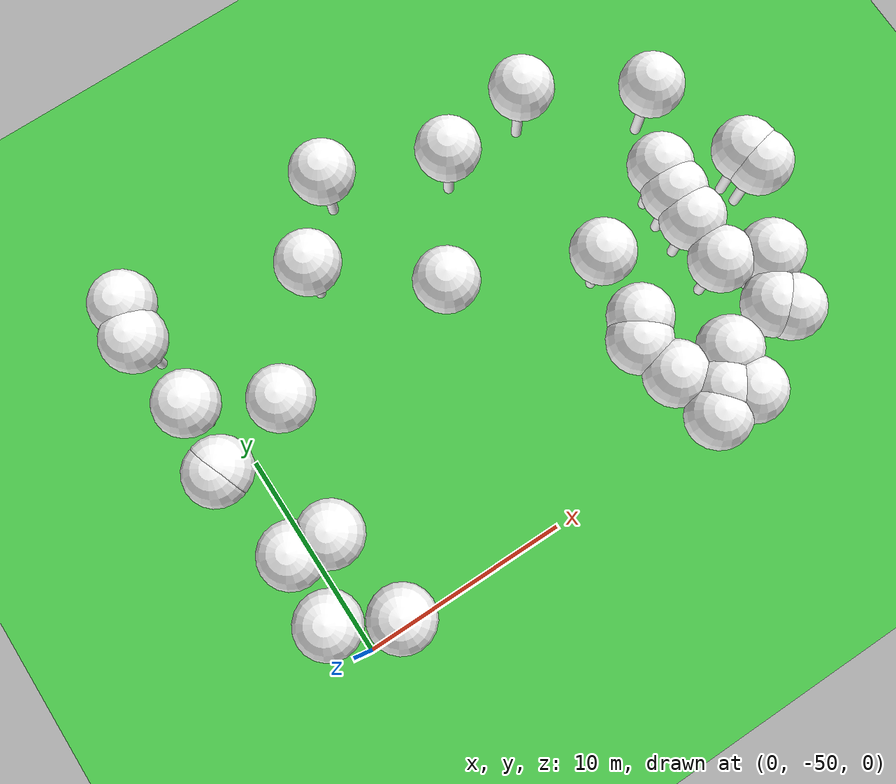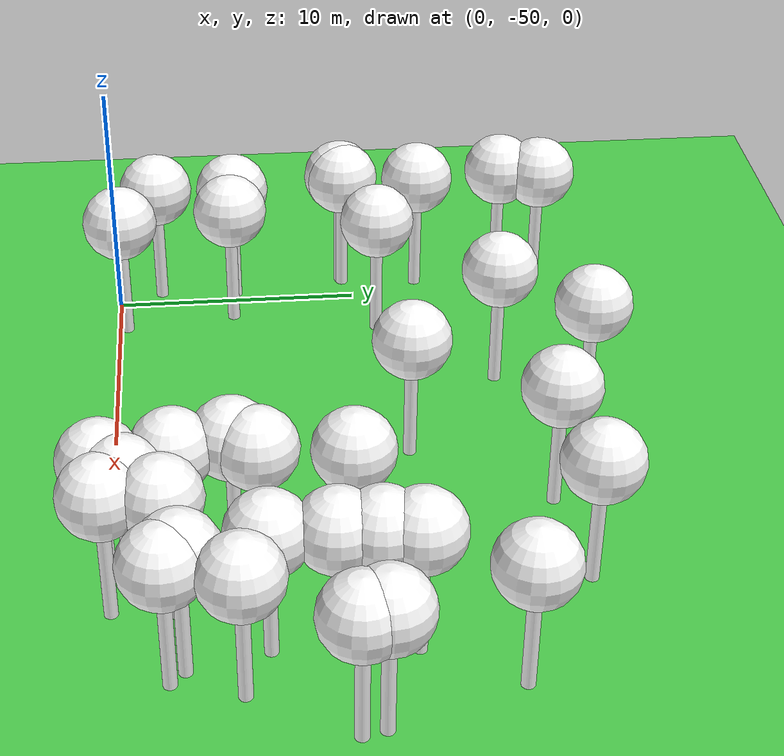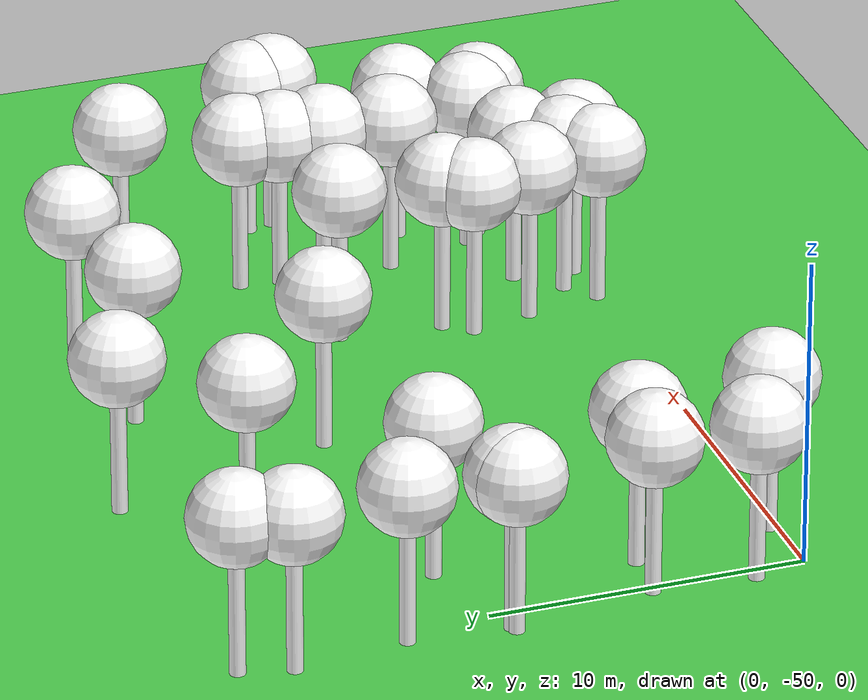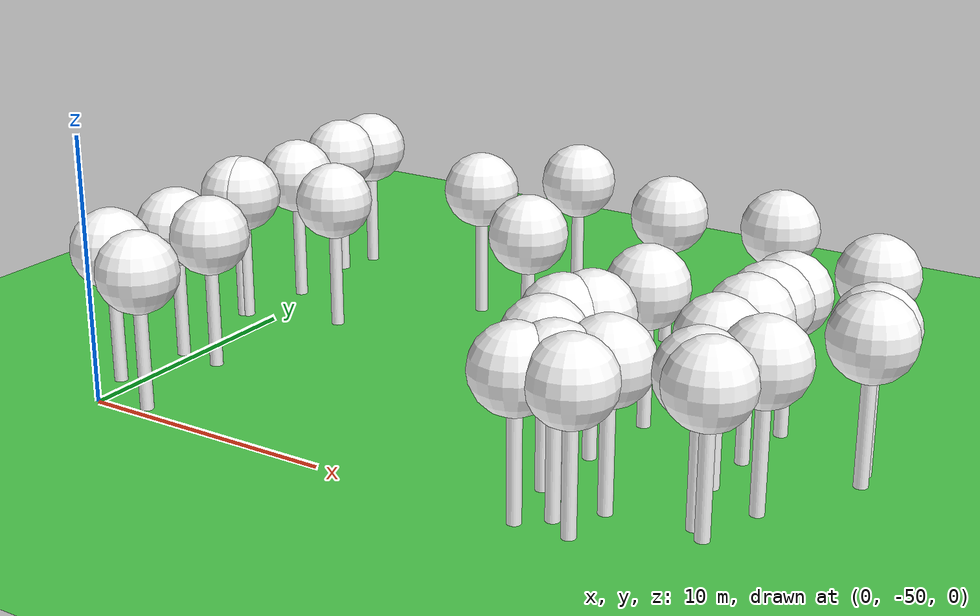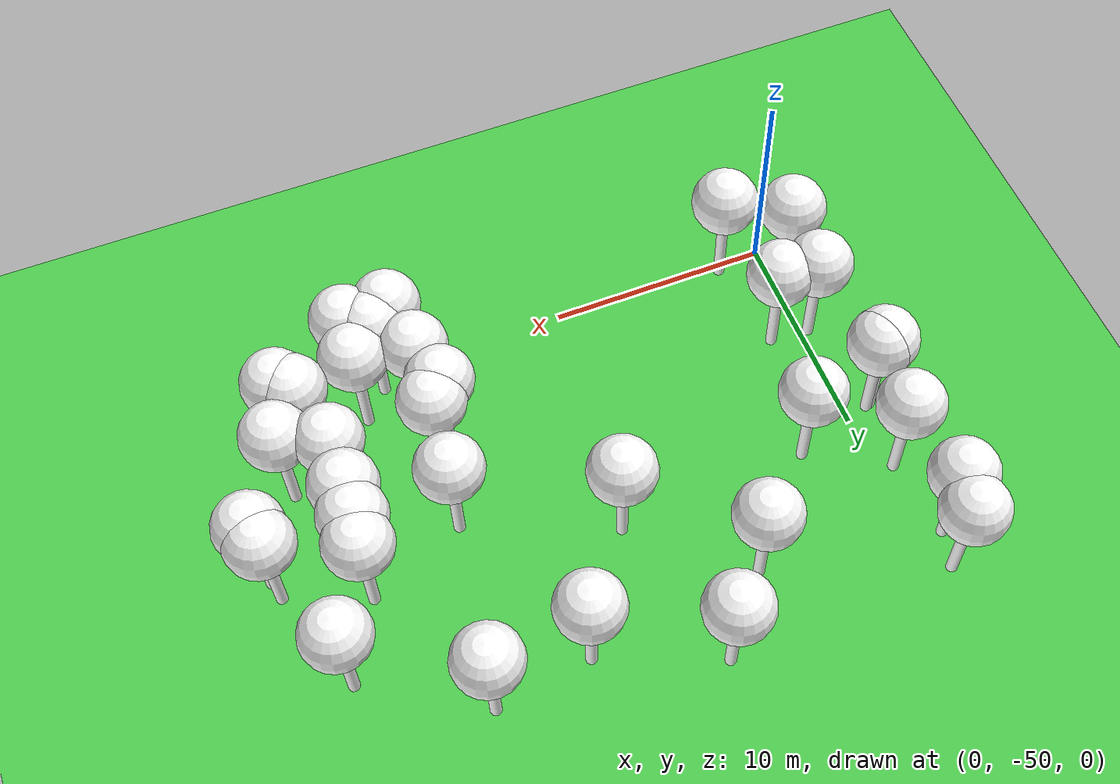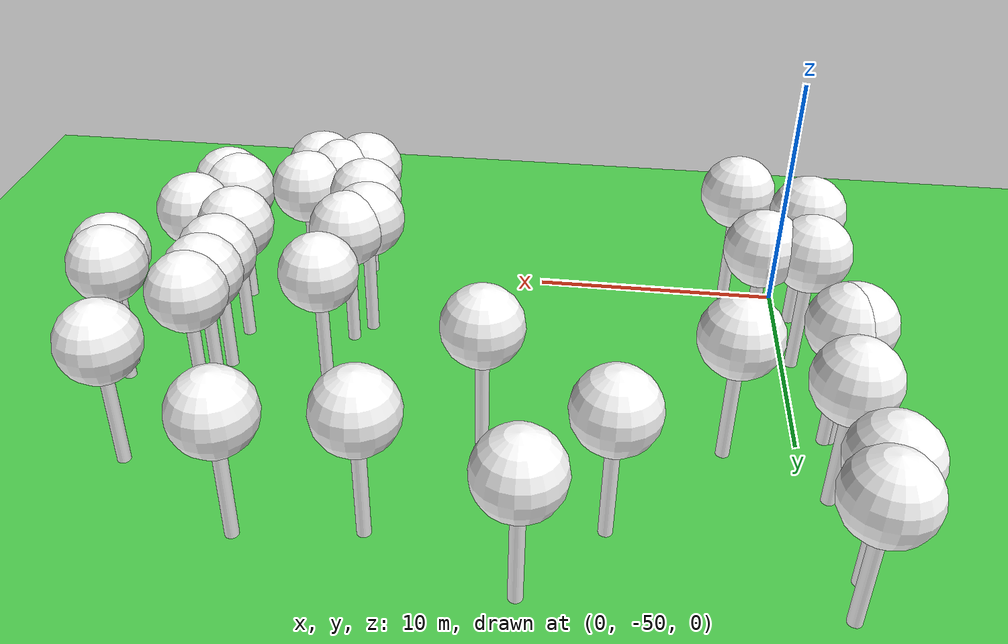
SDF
<sdf version="1.8">
 <world name="forest_world">
  <model name="tree_simple484">
   <static>1</static>
   <link name="link">
    <pose>0 0 0.1 0 -0 0</pose>
    <collision name="collision_trunk">
     <pose>0 0 2 0 -0 0</pose>
     <geometry><cylinder><radius>0.25</radius><length>4</length></cylinder></geometry>
    </collision>
    <collision name="collision_treetop">
     <pose>0 0 5.2 0 -0 0</pose>
     <geometry><sphere><radius>1.5</radius></sphere></geometry>
    </collision>
    <visual name="trunk_484">
     <pose>0 0 2 0 -0 0</pose>
     <geometry><cylinder><radius>0.25</radius><length>4</length></cylinder></geometry>
     <material>
      <ambient>0.5 0.5 0.5 1</ambient>
      <diffuse>1.0 1.0 1.0 1</diffuse>
      <specular>0.0 0.0 0.0 1</specular>
      <pbr>
       <metal>
        <albedo_map>file://textures/tree_simple_trunk.jpg</albedo_map>
        <metalness>0.0</metalness>
        <roughness>0.8</roughness>
       </metal>
      </pbr>
     </material>
    </visual>
    <visual name="treetop_484">
     <pose>0 0 5.2 0 -0 0</pose>
     <geometry><sphere><radius>1.5</radius></sphere></geometry>
     <material>
      <ambient>0.5 0.5 0.5 1</ambient>
      <diffuse>1.0 1.0 1.0 1</diffuse>
      <specular>0.0 0.0 0.0 1</specular>
      <pbr>
       <metal>
        <albedo_map>file://textures/tree_simple_treetop.jpg</albedo_map>
        <metalness>0.0</metalness>
        <roughness>0.9</roughness>
       </metal>
      </pbr>
     </material>
    </visual>
   </link>
   <pose>19.8605088225 -47.9062304077 0 0 -0 0</pose>
  </model>
  <model name="tree_simple464">
   <static>1</static>
   <link name="link">
    <pose>0 0 0.1 0 -0 0</pose>
    <collision name="collision_trunk">
     <pose>0 0 2 0 -0 0</pose>
     <geometry><cylinder><radius>0.25</radius><length>4</length></cylinder></geometry>
    </collision>
    <collision name="collision_treetop">
     <pose>0 0 5.2 0 -0 0</pose>
     <geometry><sphere><radius>1.5</radius></sphere></geometry>
    </collision>
    <visual name="trunk_464">
     <pose>0 0 2 0 -0 0</pose>
     <geometry><cylinder><radius>0.25</radius><length>4</length></cylinder></geometry>
     <material>
      <ambient>0.5 0.5 0.5 1</ambient>
      <diffuse>1.0 1.0 1.0 1</diffuse>
      <specular>0.0 0.0 0.0 1</specular>
      <pbr>
       <metal>
        <albedo_map>file://textures/tree_simple_trunk.jpg</albedo_map>
        <metalness>0.0</metalness>
        <roughness>0.8</roughness>
       </metal>
      </pbr>
     </material>
    </visual>
    <visual name="treetop_464">
     <pose>0 0 5.2 0 -0 0</pose>
     <geometry><sphere><radius>1.5</radius></sphere></geometry>
     <material>
      <ambient>0.5 0.5 0.5 1</ambient>
      <diffuse>1.0 1.0 1.0 1</diffuse>
      <specular>0.0 0.0 0.0 1</specular>
      <pbr>
       <metal>
        <albedo_map>file://textures/tree_simple_treetop.jpg</albedo_map>
        <metalness>0.0</metalness>
        <roughness>0.9</roughness>
       </metal>
      </pbr>
     </material>
    </visual>
   </link>
   <pose>18.697132214 -49.1923863075 0 0 -0 0</pose>
  </model>
  <model name="tree_simple458">
   <static>1</static>
   <link name="link">
    <pose>0 0 0.1 0 -0 0</pose>
    <collision name="collision_trunk">
     <pose>0 0 2 0 -0 0</pose>
     <geometry><cylinder><radius>0.25</radius><length>4</length></cylinder></geometry>
    </collision>
    <collision name="collision_treetop">
     <pose>0 0 5.2 0 -0 0</pose>
     <geometry><sphere><radius>1.5</radius></sphere></geometry>
    </collision>
    <visual name="trunk_458">
     <pose>0 0 2 0 -0 0</pose>
     <geometry><cylinder><radius>0.25</radius><length>4</length></cylinder></geometry>
     <material>
      <ambient>0.5 0.5 0.5 1</ambient>
      <diffuse>1.0 1.0 1.0 1</diffuse>
      <specular>0.0 0.0 0.0 1</specular>
      <pbr>
       <metal>
        <albedo_map>file://textures/tree_simple_trunk.jpg</albedo_map>
        <metalness>0.0</metalness>
        <roughness>0.8</roughness>
       </metal>
      </pbr>
     </material>
    </visual>
    <visual name="treetop_458">
     <pose>0 0 5.2 0 -0 0</pose>
     <geometry><sphere><radius>1.5</radius></sphere></geometry>
     <material>
      <ambient>0.5 0.5 0.5 1</ambient>
      <diffuse>1.0 1.0 1.0 1</diffuse>
      <specular>0.0 0.0 0.0 1</specular>
      <pbr>
       <metal>
        <albedo_map>file://textures/tree_simple_treetop.jpg</albedo_map>
        <metalness>0.0</metalness>
        <roughness>0.9</roughness>
       </metal>
      </pbr>
     </material>
    </visual>
   </link>
   <pose>2.06613671761 -49.6676263837 0 0 -0 0</pose>
  </model>
  <model name="tree_simple456">
   <static>1</static>
   <link name="link">
    <pose>0 0 0.1 0 -0 0</pose>
    <collision name="collision_trunk">
     <pose>0 0 2 0 -0 0</pose>
     <geometry><cylinder><radius>0.25</radius><length>4</length></cylinder></geometry>
    </collision>
    <collision name="collision_treetop">
     <pose>0 0 5.2 0 -0 0</pose>
     <geometry><sphere><radius>1.5</radius></sphere></geometry>
    </collision>
    <visual name="trunk_456">
     <pose>0 0 2 0 -0 0</pose>
     <geometry><cylinder><radius>0.25</radius><length>4</length></cylinder></geometry>
     <material>
      <ambient>0.5 0.5 0.5 1</ambient>
      <diffuse>1.0 1.0 1.0 1</diffuse>
      <specular>0.0 0.0 0.0 1</specular>
      <pbr>
       <metal>
        <albedo_map>file://textures/tree_simple_trunk.jpg</albedo_map>
        <metalness>0.0</metalness>
        <roughness>0.8</roughness>
       </metal>
      </pbr>
     </material>
    </visual>
    <visual name="treetop_456">
     <pose>0 0 5.2 0 -0 0</pose>
     <geometry><sphere><radius>1.5</radius></sphere></geometry>
     <material>
      <ambient>0.5 0.5 0.5 1</ambient>
      <diffuse>1.0 1.0 1.0 1</diffuse>
      <specular>0.0 0.0 0.0 1</specular>
      <pbr>
       <metal>
        <albedo_map>file://textures/tree_simple_treetop.jpg</albedo_map>
        <metalness>0.0</metalness>
        <roughness>0.9</roughness>
       </metal>
      </pbr>
     </material>
    </visual>
   </link>
   <pose>23.2076568155 -47.8591592767 0 0 -0 0</pose>
  </model>
  <model name="tree_simple454">
   <static>1</static>
   <link name="link">
    <pose>0 0 0.1 0 -0 0</pose>
    <collision name="collision_trunk">
     <pose>0 0 2 0 -0 0</pose>
     <geometry><cylinder><radius>0.25</radius><length>4</length></cylinder></geometry>
    </collision>
    <collision name="collision_treetop">
     <pose>0 0 5.2 0 -0 0</pose>
     <geometry><sphere><radius>1.5</radius></sphere></geometry>
    </collision>
    <visual name="trunk_454">
     <pose>0 0 2 0 -0 0</pose>
     <geometry><cylinder><radius>0.25</radius><length>4</length></cylinder></geometry>
     <material>
      <ambient>0.5 0.5 0.5 1</ambient>
      <diffuse>1.0 1.0 1.0 1</diffuse>
      <specular>0.0 0.0 0.0 1</specular>
      <pbr>
       <metal>
        <albedo_map>file://textures/tree_simple_trunk.jpg</albedo_map>
        <metalness>0.0</metalness>
        <roughness>0.8</roughness>
       </metal>
      </pbr>
     </material>
    </visual>
    <visual name="treetop_454">
     <pose>0 0 5.2 0 -0 0</pose>
     <geometry><sphere><radius>1.5</radius></sphere></geometry>
     <material>
      <ambient>0.5 0.5 0.5 1</ambient>
      <diffuse>1.0 1.0 1.0 1</diffuse>
      <specular>0.0 0.0 0.0 1</specular>
      <pbr>
       <metal>
        <albedo_map>file://textures/tree_simple_treetop.jpg</albedo_map>
        <metalness>0.0</metalness>
        <roughness>0.9</roughness>
       </metal>
      </pbr>
     </material>
    </visual>
   </link>
   <pose>-1.19781681146 -40.4261160925 0 0 -0 0</pose>
  </model>
  <model name="tree_simple430">
   <static>1</static>
   <link name="link">
    <pose>0 0 0.1 0 -0 0</pose>
    <collision name="collision_trunk">
     <pose>0 0 2 0 -0 0</pose>
     <geometry><cylinder><radius>0.25</radius><length>4</length></cylinder></geometry>
    </collision>
    <collision name="collision_treetop">
     <pose>0 0 5.2 0 -0 0</pose>
     <geometry><sphere><radius>1.5</radius></sphere></geometry>
    </collision>
    <visual name="trunk_430">
     <pose>0 0 2 0 -0 0</pose>
     <geometry><cylinder><radius>0.25</radius><length>4</length></cylinder></geometry>
     <material>
      <ambient>0.5 0.5 0.5 1</ambient>
      <diffuse>1.0 1.0 1.0 1</diffuse>
      <specular>0.0 0.0 0.0 1</specular>
      <pbr>
       <metal>
        <albedo_map>file://textures/tree_simple_trunk.jpg</albedo_map>
        <metalness>0.0</metalness>
        <roughness>0.8</roughness>
       </metal>
      </pbr>
     </material>
    </visual>
    <visual name="treetop_430">
     <pose>0 0 5.2 0 -0 0</pose>
     <geometry><sphere><radius>1.5</radius></sphere></geometry>
     <material>
      <ambient>0.5 0.5 0.5 1</ambient>
      <diffuse>1.0 1.0 1.0 1</diffuse>
      <specular>0.0 0.0 0.0 1</specular>
      <pbr>
       <metal>
        <albedo_map>file://textures/tree_simple_treetop.jpg</albedo_map>
        <metalness>0.0</metalness>
        <roughness>0.9</roughness>
       </metal>
      </pbr>
     </material>
    </visual>
   </link>
   <pose>19.6675265043 -49.8829362896 0 0 -0 0</pose>
  </model>
  <model name="tree_simple427">
   <static>1</static>
   <link name="link">
    <pose>0 0 0.1 0 -0 0</pose>
    <collision name="collision_trunk">
     <pose>0 0 2 0 -0 0</pose>
     <geometry><cylinder><radius>0.25</radius><length>4</length></cylinder></geometry>
    </collision>
    <collision name="collision_treetop">
     <pose>0 0 5.2 0 -0 0</pose>
     <geometry><sphere><radius>1.5</radius></sphere></geometry>
    </collision>
    <visual name="trunk_427">
     <pose>0 0 2 0 -0 0</pose>
     <geometry><cylinder><radius>0.25</radius><length>4</length></cylinder></geometry>
     <material>
      <ambient>0.5 0.5 0.5 1</ambient>
      <diffuse>1.0 1.0 1.0 1</diffuse>
      <specular>0.0 0.0 0.0 1</specular>
      <pbr>
       <metal>
        <albedo_map>file://textures/tree_simple_trunk.jpg</albedo_map>
        <metalness>0.0</metalness>
        <roughness>0.8</roughness>
       </metal>
      </pbr>
     </material>
    </visual>
    <visual name="treetop_427">
     <pose>0 0 5.2 0 -0 0</pose>
     <geometry><sphere><radius>1.5</radius></sphere></geometry>
     <material>
      <ambient>0.5 0.5 0.5 1</ambient>
      <diffuse>1.0 1.0 1.0 1</diffuse>
      <specular>0.0 0.0 0.0 1</specular>
      <pbr>
       <metal>
        <albedo_map>file://textures/tree_simple_treetop.jpg</albedo_map>
        <metalness>0.0</metalness>
        <roughness>0.9</roughness>
       </metal>
      </pbr>
     </material>
    </visual>
   </link>
   <pose>17.8220319496 -41.3749782968 0 0 -0 0</pose>
  </model>
  <model name="tree_simple423">
   <static>1</static>
   <link name="link">
    <pose>0 0 0.1 0 -0 0</pose>
    <collision name="collision_trunk">
     <pose>0 0 2 0 -0 0</pose>
     <geometry><cylinder><radius>0.25</radius><length>4</length></cylinder></geometry>
    </collision>
    <collision name="collision_treetop">
     <pose>0 0 5.2 0 -0 0</pose>
     <geometry><sphere><radius>1.5</radius></sphere></geometry>
    </collision>
    <visual name="trunk_423">
     <pose>0 0 2 0 -0 0</pose>
     <geometry><cylinder><radius>0.25</radius><length>4</length></cylinder></geometry>
     <material>
      <ambient>0.5 0.5 0.5 1</ambient>
      <diffuse>1.0 1.0 1.0 1</diffuse>
      <specular>0.0 0.0 0.0 1</specular>
      <pbr>
       <metal>
        <albedo_map>file://textures/tree_simple_trunk.jpg</albedo_map>
        <metalness>0.0</metalness>
        <roughness>0.8</roughness>
       </metal>
      </pbr>
     </material>
    </visual>
    <visual name="treetop_423">
     <pose>0 0 5.2 0 -0 0</pose>
     <geometry><sphere><radius>1.5</radius></sphere></geometry>
     <material>
      <ambient>0.5 0.5 0.5 1</ambient>
      <diffuse>1.0 1.0 1.0 1</diffuse>
      <specular>0.0 0.0 0.0 1</specular>
      <pbr>
       <metal>
        <albedo_map>file://textures/tree_simple_treetop.jpg</albedo_map>
        <metalness>0.0</metalness>
        <roughness>0.9</roughness>
       </metal>
      </pbr>
     </material>
    </visual>
   </link>
   <pose>22.6666902857 -47.3463091406 0 0 -0 0</pose>
  </model>
  <model name="tree_simple355">
   <static>1</static>
   <link name="link">
    <pose>0 0 0.1 0 -0 0</pose>
    <collision name="collision_trunk">
     <pose>0 0 2 0 -0 0</pose>
     <geometry><cylinder><radius>0.25</radius><length>4</length></cylinder></geometry>
    </collision>
    <collision name="collision_treetop">
     <pose>0 0 5.2 0 -0 0</pose>
     <geometry><sphere><radius>1.5</radius></sphere></geometry>
    </collision>
    <visual name="trunk_355">
     <pose>0 0 2 0 -0 0</pose>
     <geometry><cylinder><radius>0.25</radius><length>4</length></cylinder></geometry>
     <material>
      <ambient>0.5 0.5 0.5 1</ambient>
      <diffuse>1.0 1.0 1.0 1</diffuse>
      <specular>0.0 0.0 0.0 1</specular>
      <pbr>
       <metal>
        <albedo_map>file://textures/tree_simple_trunk.jpg</albedo_map>
        <metalness>0.0</metalness>
        <roughness>0.8</roughness>
       </metal>
      </pbr>
     </material>
    </visual>
    <visual name="treetop_355">
     <pose>0 0 5.2 0 -0 0</pose>
     <geometry><sphere><radius>1.5</radius></sphere></geometry>
     <material>
      <ambient>0.5 0.5 0.5 1</ambient>
      <diffuse>1.0 1.0 1.0 1</diffuse>
      <specular>0.0 0.0 0.0 1</specular>
      <pbr>
       <metal>
        <albedo_map>file://textures/tree_simple_treetop.jpg</albedo_map>
        <metalness>0.0</metalness>
        <roughness>0.9</roughness>
       </metal>
      </pbr>
     </material>
    </visual>
   </link>
   <pose>25.975286884 -41.7874404901 0 0 -0 0</pose>
  </model>
  <model name="tree_simple344">
   <static>1</static>
   <link name="link">
    <pose>0 0 0.1 0 -0 0</pose>
    <collision name="collision_trunk">
     <pose>0 0 2 0 -0 0</pose>
     <geometry><cylinder><radius>0.25</radius><length>4</length></cylinder></geometry>
    </collision>
    <collision name="collision_treetop">
     <pose>0 0 5.2 0 -0 0</pose>
     <geometry><sphere><radius>1.5</radius></sphere></geometry>
    </collision>
    <visual name="trunk_344">
     <pose>0 0 2 0 -0 0</pose>
     <geometry><cylinder><radius>0.25</radius><length>4</length></cylinder></geometry>
     <material>
      <ambient>0.5 0.5 0.5 1</ambient>
      <diffuse>1.0 1.0 1.0 1</diffuse>
      <specular>0.0 0.0 0.0 1</specular>
      <pbr>
       <metal>
        <albedo_map>file://textures/tree_simple_trunk.jpg</albedo_map>
        <metalness>0.0</metalness>
        <roughness>0.8</roughness>
       </metal>
      </pbr>
     </material>
    </visual>
    <visual name="treetop_344">
     <pose>0 0 5.2 0 -0 0</pose>
     <geometry><sphere><radius>1.5</radius></sphere></geometry>
     <material>
      <ambient>0.5 0.5 0.5 1</ambient>
      <diffuse>1.0 1.0 1.0 1</diffuse>
      <specular>0.0 0.0 0.0 1</specular>
      <pbr>
       <metal>
        <albedo_map>file://textures/tree_simple_treetop.jpg</albedo_map>
        <metalness>0.0</metalness>
        <roughness>0.9</roughness>
       </metal>
      </pbr>
     </material>
    </visual>
   </link>
   <pose>-1.01406181855 -40.356708741 0 0 -0 0</pose>
  </model>
  <model name="tree_simple329">
   <static>1</static>
   <link name="link">
    <pose>0 0 0.1 0 -0 0</pose>
    <collision name="collision_trunk">
     <pose>0 0 2 0 -0 0</pose>
     <geometry><cylinder><radius>0.25</radius><length>4</length></cylinder></geometry>
    </collision>
    <collision name="collision_treetop">
     <pose>0 0 5.2 0 -0 0</pose>
     <geometry><sphere><radius>1.5</radius></sphere></geometry>
    </collision>
    <visual name="trunk_329">
     <pose>0 0 2 0 -0 0</pose>
     <geometry><cylinder><radius>0.25</radius><length>4</length></cylinder></geometry>
     <material>
      <ambient>0.5 0.5 0.5 1</ambient>
      <diffuse>1.0 1.0 1.0 1</diffuse>
      <specular>0.0 0.0 0.0 1</specular>
      <pbr>
       <metal>
        <albedo_map>file://textures/tree_simple_trunk.jpg</albedo_map>
        <metalness>0.0</metalness>
        <roughness>0.8</roughness>
       </metal>
      </pbr>
     </material>
    </visual>
    <visual name="treetop_329">
     <pose>0 0 5.2 0 -0 0</pose>
     <geometry><sphere><radius>1.5</radius></sphere></geometry>
     <material>
      <ambient>0.5 0.5 0.5 1</ambient>
      <diffuse>1.0 1.0 1.0 1</diffuse>
      <specular>0.0 0.0 0.0 1</specular>
      <pbr>
       <metal>
        <albedo_map>file://textures/tree_simple_treetop.jpg</albedo_map>
        <metalness>0.0</metalness>
        <roughness>0.9</roughness>
       </metal>
      </pbr>
     </material>
    </visual>
   </link>
   <pose>22.038430334 -40.7859522783 0 0 -0 0</pose>
  </model>
  <model name="tree_simple285">
   <static>1</static>
   <link name="link">
    <pose>0 0 0.1 0 -0 0</pose>
    <collision name="collision_trunk">
     <pose>0 0 2 0 -0 0</pose>
     <geometry><cylinder><radius>0.25</radius><length>4</length></cylinder></geometry>
    </collision>
    <collision name="collision_treetop">
     <pose>0 0 5.2 0 -0 0</pose>
     <geometry><sphere><radius>1.5</radius></sphere></geometry>
    </collision>
    <visual name="trunk_285">
     <pose>0 0 2 0 -0 0</pose>
     <geometry><cylinder><radius>0.25</radius><length>4</length></cylinder></geometry>
     <material>
      <ambient>0.5 0.5 0.5 1</ambient>
      <diffuse>1.0 1.0 1.0 1</diffuse>
      <specular>0.0 0.0 0.0 1</specular>
      <pbr>
       <metal>
        <albedo_map>file://textures/tree_simple_trunk.jpg</albedo_map>
        <metalness>0.0</metalness>
        <roughness>0.8</roughness>
       </metal>
      </pbr>
     </material>
    </visual>
    <visual name="treetop_285">
     <pose>0 0 5.2 0 -0 0</pose>
     <geometry><sphere><radius>1.5</radius></sphere></geometry>
     <material>
      <ambient>0.5 0.5 0.5 1</ambient>
      <diffuse>1.0 1.0 1.0 1</diffuse>
      <specular>0.0 0.0 0.0 1</specular>
      <pbr>
       <metal>
        <albedo_map>file://textures/tree_simple_treetop.jpg</albedo_map>
        <metalness>0.0</metalness>
        <roughness>0.9</roughness>
       </metal>
      </pbr>
     </material>
    </visual>
   </link>
   <pose>-0.758587547347 -37.1758267931 0 0 -0 0</pose>
  </model>
  <model name="tree_simple281">
   <static>1</static>
   <link name="link">
    <pose>0 0 0.1 0 -0 0</pose>
    <collision name="collision_trunk">
     <pose>0 0 2 0 -0 0</pose>
     <geometry><cylinder><radius>0.25</radius><length>4</length></cylinder></geometry>
    </collision>
    <collision name="collision_treetop">
     <pose>0 0 5.2 0 -0 0</pose>
     <geometry><sphere><radius>1.5</radius></sphere></geometry>
    </collision>
    <visual name="trunk_281">
     <pose>0 0 2 0 -0 0</pose>
     <geometry><cylinder><radius>0.25</radius><length>4</length></cylinder></geometry>
     <material>
      <ambient>0.5 0.5 0.5 1</ambient>
      <diffuse>1.0 1.0 1.0 1</diffuse>
      <specular>0.0 0.0 0.0 1</specular>
      <pbr>
       <metal>
        <albedo_map>file://textures/tree_simple_trunk.jpg</albedo_map>
        <metalness>0.0</metalness>
        <roughness>0.8</roughness>
       </metal>
      </pbr>
     </material>
    </visual>
    <visual name="treetop_281">
     <pose>0 0 5.2 0 -0 0</pose>
     <geometry><sphere><radius>1.5</radius></sphere></geometry>
     <material>
      <ambient>0.5 0.5 0.5 1</ambient>
      <diffuse>1.0 1.0 1.0 1</diffuse>
      <specular>0.0 0.0 0.0 1</specular>
      <pbr>
       <metal>
        <albedo_map>file://textures/tree_simple_treetop.jpg</albedo_map>
        <metalness>0.0</metalness>
        <roughness>0.9</roughness>
       </metal>
      </pbr>
     </material>
    </visual>
   </link>
   <pose>17.7631793605 -49.9798329039 0 0 -0 0</pose>
  </model>
  <model name="tree_simple249">
   <static>1</static>
   <link name="link">
    <pose>0 0 0.1 0 -0 0</pose>
    <collision name="collision_trunk">
     <pose>0 0 2 0 -0 0</pose>
     <geometry><cylinder><radius>0.25</radius><length>4</length></cylinder></geometry>
    </collision>
    <collision name="collision_treetop">
     <pose>0 0 5.2 0 -0 0</pose>
     <geometry><sphere><radius>1.5</radius></sphere></geometry>
    </collision>
    <visual name="trunk_249">
     <pose>0 0 2 0 -0 0</pose>
     <geometry><cylinder><radius>0.25</radius><length>4</length></cylinder></geometry>
     <material>
      <ambient>0.5 0.5 0.5 1</ambient>
      <diffuse>1.0 1.0 1.0 1</diffuse>
      <specular>0.0 0.0 0.0 1</specular>
      <pbr>
       <metal>
        <albedo_map>file://textures/tree_simple_trunk.jpg</albedo_map>
        <metalness>0.0</metalness>
        <roughness>0.8</roughness>
       </metal>
      </pbr>
     </material>
    </visual>
    <visual name="treetop_249">
     <pose>0 0 5.2 0 -0 0</pose>
     <geometry><sphere><radius>1.5</radius></sphere></geometry>
     <material>
      <ambient>0.5 0.5 0.5 1</ambient>
      <diffuse>1.0 1.0 1.0 1</diffuse>
      <specular>0.0 0.0 0.0 1</specular>
      <pbr>
       <metal>
        <albedo_map>file://textures/tree_simple_treetop.jpg</albedo_map>
        <metalness>0.0</metalness>
        <roughness>0.9</roughness>
       </metal>
      </pbr>
     </material>
    </visual>
   </link>
   <pose>9.52111231685 -31.538100668 0 0 -0 0</pose>
  </model>
  <model name="tree_simple233">
   <static>1</static>
   <link name="link">
    <pose>0 0 0.1 0 -0 0</pose>
    <collision name="collision_trunk">
     <pose>0 0 2 0 -0 0</pose>
     <geometry><cylinder><radius>0.25</radius><length>4</length></cylinder></geometry>
    </collision>
    <collision name="collision_treetop">
     <pose>0 0 5.2 0 -0 0</pose>
     <geometry><sphere><radius>1.5</radius></sphere></geometry>
    </collision>
    <visual name="trunk_233">
     <pose>0 0 2 0 -0 0</pose>
     <geometry><cylinder><radius>0.25</radius><length>4</length></cylinder></geometry>
     <material>
      <ambient>0.5 0.5 0.5 1</ambient>
      <diffuse>1.0 1.0 1.0 1</diffuse>
      <specular>0.0 0.0 0.0 1</specular>
      <pbr>
       <metal>
        <albedo_map>file://textures/tree_simple_trunk.jpg</albedo_map>
        <metalness>0.0</metalness>
        <roughness>0.8</roughness>
       </metal>
      </pbr>
     </material>
    </visual>
    <visual name="treetop_233">
     <pose>0 0 5.2 0 -0 0</pose>
     <geometry><sphere><radius>1.5</radius></sphere></geometry>
     <material>
      <ambient>0.5 0.5 0.5 1</ambient>
      <diffuse>1.0 1.0 1.0 1</diffuse>
      <specular>0.0 0.0 0.0 1</specular>
      <pbr>
       <metal>
        <albedo_map>file://textures/tree_simple_treetop.jpg</albedo_map>
        <metalness>0.0</metalness>
        <roughness>0.9</roughness>
       </metal>
      </pbr>
     </material>
    </visual>
   </link>
   <pose>21.929125889 -44.4760714013 0 0 -0 0</pose>
  </model>
  <model name="tree_simple223">
   <static>1</static>
   <link name="link">
    <pose>0 0 0.1 0 -0 0</pose>
    <collision name="collision_trunk">
     <pose>0 0 2 0 -0 0</pose>
     <geometry><cylinder><radius>0.25</radius><length>4</length></cylinder></geometry>
    </collision>
    <collision name="collision_treetop">
     <pose>0 0 5.2 0 -0 0</pose>
     <geometry><sphere><radius>1.5</radius></sphere></geometry>
    </collision>
    <visual name="trunk_223">
     <pose>0 0 2 0 -0 0</pose>
     <geometry><cylinder><radius>0.25</radius><length>4</length></cylinder></geometry>
     <material>
      <ambient>0.5 0.5 0.5 1</ambient>
      <diffuse>1.0 1.0 1.0 1</diffuse>
      <specular>0.0 0.0 0.0 1</specular>
      <pbr>
       <metal>
        <albedo_map>file://textures/tree_simple_trunk.jpg</albedo_map>
        <metalness>0.0</metalness>
        <roughness>0.8</roughness>
       </metal>
      </pbr>
     </material>
    </visual>
    <visual name="treetop_223">
     <pose>0 0 5.2 0 -0 0</pose>
     <geometry><sphere><radius>1.5</radius></sphere></geometry>
     <material>
      <ambient>0.5 0.5 0.5 1</ambient>
      <diffuse>1.0 1.0 1.0 1</diffuse>
      <specular>0.0 0.0 0.0 1</specular>
      <pbr>
       <metal>
        <albedo_map>file://textures/tree_simple_treetop.jpg</albedo_map>
        <metalness>0.0</metalness>
        <roughness>0.9</roughness>
       </metal>
      </pbr>
     </material>
    </visual>
   </link>
   <pose>-0.831429515675 -31.9083877979 0 0 -0 0</pose>
  </model>
  <model name="tree_simple215">
   <static>1</static>
   <link name="link">
    <pose>0 0 0.1 0 -0 0</pose>
    <collision name="collision_trunk">
     <pose>0 0 2 0 -0 0</pose>
     <geometry><cylinder><radius>0.25</radius><length>4</length></cylinder></geometry>
    </collision>
    <collision name="collision_treetop">
     <pose>0 0 5.2 0 -0 0</pose>
     <geometry><sphere><radius>1.5</radius></sphere></geometry>
    </collision>
    <visual name="trunk_215">
     <pose>0 0 2 0 -0 0</pose>
     <geometry><cylinder><radius>0.25</radius><length>4</length></cylinder></geometry>
     <material>
      <ambient>0.5 0.5 0.5 1</ambient>
      <diffuse>1.0 1.0 1.0 1</diffuse>
      <specular>0.0 0.0 0.0 1</specular>
      <pbr>
       <metal>
        <albedo_map>file://textures/tree_simple_trunk.jpg</albedo_map>
        <metalness>0.0</metalness>
        <roughness>0.8</roughness>
       </metal>
      </pbr>
     </material>
    </visual>
    <visual name="treetop_215">
     <pose>0 0 5.2 0 -0 0</pose>
     <geometry><sphere><radius>1.5</radius></sphere></geometry>
     <material>
      <ambient>0.5 0.5 0.5 1</ambient>
      <diffuse>1.0 1.0 1.0 1</diffuse>
      <specular>0.0 0.0 0.0 1</specular>
      <pbr>
       <metal>
        <albedo_map>file://textures/tree_simple_treetop.jpg</albedo_map>
        <metalness>0.0</metalness>
        <roughness>0.9</roughness>
       </metal>
      </pbr>
     </material>
    </visual>
   </link>
   <pose>6.8108440726 -34.7298391892 0 0 -0 0</pose>
  </model>
  <model name="tree_simple169">
   <static>1</static>
   <link name="link">
    <pose>0 0 0.1 0 -0 0</pose>
    <collision name="collision_trunk">
     <pose>0 0 2 0 -0 0</pose>
     <geometry><cylinder><radius>0.25</radius><length>4</length></cylinder></geometry>
    </collision>
    <collision name="collision_treetop">
     <pose>0 0 5.2 0 -0 0</pose>
     <geometry><sphere><radius>1.5</radius></sphere></geometry>
    </collision>
    <visual name="trunk_169">
     <pose>0 0 2 0 -0 0</pose>
     <geometry><cylinder><radius>0.25</radius><length>4</length></cylinder></geometry>
     <material>
      <ambient>0.5 0.5 0.5 1</ambient>
      <diffuse>1.0 1.0 1.0 1</diffuse>
      <specular>0.0 0.0 0.0 1</specular>
      <pbr>
       <metal>
        <albedo_map>file://textures/tree_simple_trunk.jpg</albedo_map>
        <metalness>0.0</metalness>
        <roughness>0.8</roughness>
       </metal>
      </pbr>
     </material>
    </visual>
    <visual name="treetop_169">
     <pose>0 0 5.2 0 -0 0</pose>
     <geometry><sphere><radius>1.5</radius></sphere></geometry>
     <material>
      <ambient>0.5 0.5 0.5 1</ambient>
      <diffuse>1.0 1.0 1.0 1</diffuse>
      <specular>0.0 0.0 0.0 1</specular>
      <pbr>
       <metal>
        <albedo_map>file://textures/tree_simple_treetop.jpg</albedo_map>
        <metalness>0.0</metalness>
        <roughness>0.9</roughness>
       </metal>
      </pbr>
     </material>
    </visual>
   </link>
   <pose>25.7710646255 -40.9498520998 0 0 -0 0</pose>
  </model>
  <model name="tree_simple167">
   <static>1</static>
   <link name="link">
    <pose>0 0 0.1 0 -0 0</pose>
    <collision name="collision_trunk">
     <pose>0 0 2 0 -0 0</pose>
     <geometry><cylinder><radius>0.25</radius><length>4</length></cylinder></geometry>
    </collision>
    <collision name="collision_treetop">
     <pose>0 0 5.2 0 -0 0</pose>
     <geometry><sphere><radius>1.5</radius></sphere></geometry>
    </collision>
    <visual name="trunk_167">
     <pose>0 0 2 0 -0 0</pose>
     <geometry><cylinder><radius>0.25</radius><length>4</length></cylinder></geometry>
     <material>
      <ambient>0.5 0.5 0.5 1</ambient>
      <diffuse>1.0 1.0 1.0 1</diffuse>
      <specular>0.0 0.0 0.0 1</specular>
      <pbr>
       <metal>
        <albedo_map>file://textures/tree_simple_trunk.jpg</albedo_map>
        <metalness>0.0</metalness>
        <roughness>0.8</roughness>
       </metal>
      </pbr>
     </material>
    </visual>
    <visual name="treetop_167">
     <pose>0 0 5.2 0 -0 0</pose>
     <geometry><sphere><radius>1.5</radius></sphere></geometry>
     <material>
      <ambient>0.5 0.5 0.5 1</ambient>
      <diffuse>1.0 1.0 1.0 1</diffuse>
      <specular>0.0 0.0 0.0 1</specular>
      <pbr>
       <metal>
        <albedo_map>file://textures/tree_simple_treetop.jpg</albedo_map>
        <metalness>0.0</metalness>
        <roughness>0.9</roughness>
       </metal>
      </pbr>
     </material>
    </visual>
   </link>
   <pose>14.7724548693 -33.6841584831 0 0 -0 0</pose>
  </model>
  <model name="tree_simple153">
   <static>1</static>
   <link name="link">
    <pose>0 0 0.1 0 -0 0</pose>
    <collision name="collision_trunk">
     <pose>0 0 2 0 -0 0</pose>
     <geometry><cylinder><radius>0.25</radius><length>4</length></cylinder></geometry>
    </collision>
    <collision name="collision_treetop">
     <pose>0 0 5.2 0 -0 0</pose>
     <geometry><sphere><radius>1.5</radius></sphere></geometry>
    </collision>
    <visual name="trunk_153">
     <pose>0 0 2 0 -0 0</pose>
     <geometry><cylinder><radius>0.25</radius><length>4</length></cylinder></geometry>
     <material>
      <ambient>0.5 0.5 0.5 1</ambient>
      <diffuse>1.0 1.0 1.0 1</diffuse>
      <specular>0.0 0.0 0.0 1</specular>
      <pbr>
       <metal>
        <albedo_map>file://textures/tree_simple_trunk.jpg</albedo_map>
        <metalness>0.0</metalness>
        <roughness>0.8</roughness>
       </metal>
      </pbr>
     </material>
    </visual>
    <visual name="treetop_153">
     <pose>0 0 5.2 0 -0 0</pose>
     <geometry><sphere><radius>1.5</radius></sphere></geometry>
     <material>
      <ambient>0.5 0.5 0.5 1</ambient>
      <diffuse>1.0 1.0 1.0 1</diffuse>
      <specular>0.0 0.0 0.0 1</specular>
      <pbr>
       <metal>
        <albedo_map>file://textures/tree_simple_treetop.jpg</albedo_map>
        <metalness>0.0</metalness>
        <roughness>0.9</roughness>
       </metal>
      </pbr>
     </material>
    </visual>
   </link>
   <pose>24.0970841452 -36.1585269214 0 0 -0 0</pose>
  </model>
  <model name="tree_simple142">
   <static>1</static>
   <link name="link">
    <pose>0 0 0.1 0 -0 0</pose>
    <collision name="collision_trunk">
     <pose>0 0 2 0 -0 0</pose>
     <geometry><cylinder><radius>0.25</radius><length>4</length></cylinder></geometry>
    </collision>
    <collision name="collision_treetop">
     <pose>0 0 5.2 0 -0 0</pose>
     <geometry><sphere><radius>1.5</radius></sphere></geometry>
    </collision>
    <visual name="trunk_142">
     <pose>0 0 2 0 -0 0</pose>
     <geometry><cylinder><radius>0.25</radius><length>4</length></cylinder></geometry>
     <material>
      <ambient>0.5 0.5 0.5 1</ambient>
      <diffuse>1.0 1.0 1.0 1</diffuse>
      <specular>0.0 0.0 0.0 1</specular>
      <pbr>
       <metal>
        <albedo_map>file://textures/tree_simple_trunk.jpg</albedo_map>
        <metalness>0.0</metalness>
        <roughness>0.8</roughness>
       </metal>
      </pbr>
     </material>
    </visual>
    <visual name="treetop_142">
     <pose>0 0 5.2 0 -0 0</pose>
     <geometry><sphere><radius>1.5</radius></sphere></geometry>
     <material>
      <ambient>0.5 0.5 0.5 1</ambient>
      <diffuse>1.0 1.0 1.0 1</diffuse>
      <specular>0.0 0.0 0.0 1</specular>
      <pbr>
       <metal>
        <albedo_map>file://textures/tree_simple_treetop.jpg</albedo_map>
        <metalness>0.0</metalness>
        <roughness>0.9</roughness>
       </metal>
      </pbr>
     </material>
    </visual>
   </link>
   <pose>2.70227648478 -39.1925835725 0 0 -0 0</pose>
  </model>
  <model name="tree_simple139">
   <static>1</static>
   <link name="link">
    <pose>0 0 0.1 0 -0 0</pose>
    <collision name="collision_trunk">
     <pose>0 0 2 0 -0 0</pose>
     <geometry><cylinder><radius>0.25</radius><length>4</length></cylinder></geometry>
    </collision>
    <collision name="collision_treetop">
     <pose>0 0 5.2 0 -0 0</pose>
     <geometry><sphere><radius>1.5</radius></sphere></geometry>
    </collision>
    <visual name="trunk_139">
     <pose>0 0 2 0 -0 0</pose>
     <geometry><cylinder><radius>0.25</radius><length>4</length></cylinder></geometry>
     <material>
      <ambient>0.5 0.5 0.5 1</ambient>
      <diffuse>1.0 1.0 1.0 1</diffuse>
      <specular>0.0 0.0 0.0 1</specular>
      <pbr>
       <metal>
        <albedo_map>file://textures/tree_simple_trunk.jpg</albedo_map>
        <metalness>0.0</metalness>
        <roughness>0.8</roughness>
       </metal>
      </pbr>
     </material>
    </visual>
    <visual name="treetop_139">
     <pose>0 0 5.2 0 -0 0</pose>
     <geometry><sphere><radius>1.5</radius></sphere></geometry>
     <material>
      <ambient>0.5 0.5 0.5 1</ambient>
      <diffuse>1.0 1.0 1.0 1</diffuse>
      <specular>0.0 0.0 0.0 1</specular>
      <pbr>
       <metal>
        <albedo_map>file://textures/tree_simple_treetop.jpg</albedo_map>
        <metalness>0.0</metalness>
        <roughness>0.9</roughness>
       </metal>
      </pbr>
     </material>
    </visual>
   </link>
   <pose>16.853661786 -45.5057571818 0 0 -0 0</pose>
  </model>
  <model name="tree_simple123">
   <static>1</static>
   <link name="link">
    <pose>0 0 0.1 0 -0 0</pose>
    <collision name="collision_trunk">
     <pose>0 0 2 0 -0 0</pose>
     <geometry><cylinder><radius>0.25</radius><length>4</length></cylinder></geometry>
    </collision>
    <collision name="collision_treetop">
     <pose>0 0 5.2 0 -0 0</pose>
     <geometry><sphere><radius>1.5</radius></sphere></geometry>
    </collision>
    <visual name="trunk_123">
     <pose>0 0 2 0 -0 0</pose>
     <geometry><cylinder><radius>0.25</radius><length>4</length></cylinder></geometry>
     <material>
      <ambient>0.5 0.5 0.5 1</ambient>
      <diffuse>1.0 1.0 1.0 1</diffuse>
      <specular>0.0 0.0 0.0 1</specular>
      <pbr>
       <metal>
        <albedo_map>file://textures/tree_simple_trunk.jpg</albedo_map>
        <metalness>0.0</metalness>
        <roughness>0.8</roughness>
       </metal>
      </pbr>
     </material>
    </visual>
    <visual name="treetop_123">
     <pose>0 0 5.2 0 -0 0</pose>
     <geometry><sphere><radius>1.5</radius></sphere></geometry>
     <material>
      <ambient>0.5 0.5 0.5 1</ambient>
      <diffuse>1.0 1.0 1.0 1</diffuse>
      <specular>0.0 0.0 0.0 1</specular>
      <pbr>
       <metal>
        <albedo_map>file://textures/tree_simple_treetop.jpg</albedo_map>
        <metalness>0.0</metalness>
        <roughness>0.9</roughness>
       </metal>
      </pbr>
     </material>
    </visual>
   </link>
   <pose>17.3351285606 -47.5264442332 0 0 -0 0</pose>
  </model>
  <model name="tree_simple115">
   <static>1</static>
   <link name="link">
    <pose>0 0 0.1 0 -0 0</pose>
    <collision name="collision_trunk">
     <pose>0 0 2 0 -0 0</pose>
     <geometry><cylinder><radius>0.25</radius><length>4</length></cylinder></geometry>
    </collision>
    <collision name="collision_treetop">
     <pose>0 0 5.2 0 -0 0</pose>
     <geometry><sphere><radius>1.5</radius></sphere></geometry>
    </collision>
    <visual name="trunk_115">
     <pose>0 0 2 0 -0 0</pose>
     <geometry><cylinder><radius>0.25</radius><length>4</length></cylinder></geometry>
     <material>
      <ambient>0.5 0.5 0.5 1</ambient>
      <diffuse>1.0 1.0 1.0 1</diffuse>
      <specular>0.0 0.0 0.0 1</specular>
      <pbr>
       <metal>
        <albedo_map>file://textures/tree_simple_trunk.jpg</albedo_map>
        <metalness>0.0</metalness>
        <roughness>0.8</roughness>
       </metal>
      </pbr>
     </material>
    </visual>
    <visual name="treetop_115">
     <pose>0 0 5.2 0 -0 0</pose>
     <geometry><sphere><radius>1.5</radius></sphere></geometry>
     <material>
      <ambient>0.5 0.5 0.5 1</ambient>
      <diffuse>1.0 1.0 1.0 1</diffuse>
      <specular>0.0 0.0 0.0 1</specular>
      <pbr>
       <metal>
        <albedo_map>file://textures/tree_simple_treetop.jpg</albedo_map>
        <metalness>0.0</metalness>
        <roughness>0.9</roughness>
       </metal>
      </pbr>
     </material>
    </visual>
   </link>
   <pose>23.9238582862 -45.4027076844 0 0 -0 0</pose>
  </model>
  <model name="tree_simple108">
   <static>1</static>
   <link name="link">
    <pose>0 0 0.1 0 -0 0</pose>
    <collision name="collision_trunk">
     <pose>0 0 2 0 -0 0</pose>
     <geometry><cylinder><radius>0.25</radius><length>4</length></cylinder></geometry>
    </collision>
    <collision name="collision_treetop">
     <pose>0 0 5.2 0 -0 0</pose>
     <geometry><sphere><radius>1.5</radius></sphere></geometry>
    </collision>
    <visual name="trunk_108">
     <pose>0 0 2 0 -0 0</pose>
     <geometry><cylinder><radius>0.25</radius><length>4</length></cylinder></geometry>
     <material>
      <ambient>0.5 0.5 0.5 1</ambient>
      <diffuse>1.0 1.0 1.0 1</diffuse>
      <specular>0.0 0.0 0.0 1</specular>
      <pbr>
       <metal>
        <albedo_map>file://textures/tree_simple_trunk.jpg</albedo_map>
        <metalness>0.0</metalness>
        <roughness>0.8</roughness>
       </metal>
      </pbr>
     </material>
    </visual>
    <visual name="treetop_108">
     <pose>0 0 5.2 0 -0 0</pose>
     <geometry><sphere><radius>1.5</radius></sphere></geometry>
     <material>
      <ambient>0.5 0.5 0.5 1</ambient>
      <diffuse>1.0 1.0 1.0 1</diffuse>
      <specular>0.0 0.0 0.0 1</specular>
      <pbr>
       <metal>
        <albedo_map>file://textures/tree_simple_treetop.jpg</albedo_map>
        <metalness>0.0</metalness>
        <roughness>0.9</roughness>
       </metal>
      </pbr>
     </material>
    </visual>
   </link>
   <pose>1.42931989254 -45.1660279448 0 0 -0 0</pose>
  </model>
  <model name="tree_simple107">
   <static>1</static>
   <link name="link">
    <pose>0 0 0.1 0 -0 0</pose>
    <collision name="collision_trunk">
     <pose>0 0 2 0 -0 0</pose>
     <geometry><cylinder><radius>0.25</radius><length>4</length></cylinder></geometry>
    </collision>
    <collision name="collision_treetop">
     <pose>0 0 5.2 0 -0 0</pose>
     <geometry><sphere><radius>1.5</radius></sphere></geometry>
    </collision>
    <visual name="trunk_107">
     <pose>0 0 2 0 -0 0</pose>
     <geometry><cylinder><radius>0.25</radius><length>4</length></cylinder></geometry>
     <material>
      <ambient>0.5 0.5 0.5 1</ambient>
      <diffuse>1.0 1.0 1.0 1</diffuse>
      <specular>0.0 0.0 0.0 1</specular>
      <pbr>
       <metal>
        <albedo_map>file://textures/tree_simple_trunk.jpg</albedo_map>
        <metalness>0.0</metalness>
        <roughness>0.8</roughness>
       </metal>
      </pbr>
     </material>
    </visual>
    <visual name="treetop_107">
     <pose>0 0 5.2 0 -0 0</pose>
     <geometry><sphere><radius>1.5</radius></sphere></geometry>
     <material>
      <ambient>0.5 0.5 0.5 1</ambient>
      <diffuse>1.0 1.0 1.0 1</diffuse>
      <specular>0.0 0.0 0.0 1</specular>
      <pbr>
       <metal>
        <albedo_map>file://textures/tree_simple_treetop.jpg</albedo_map>
        <metalness>0.0</metalness>
        <roughness>0.9</roughness>
       </metal>
      </pbr>
     </material>
    </visual>
   </link>
   <pose>-1.23057164025 -33.5425651467 0 0 -0 0</pose>
  </model>
  <model name="tree_simple96">
   <static>1</static>
   <link name="link">
    <pose>0 0 0.1 0 -0 0</pose>
    <collision name="collision_trunk">
     <pose>0 0 2 0 -0 0</pose>
     <geometry><cylinder><radius>0.25</radius><length>4</length></cylinder></geometry>
    </collision>
    <collision name="collision_treetop">
     <pose>0 0 5.2 0 -0 0</pose>
     <geometry><sphere><radius>1.5</radius></sphere></geometry>
    </collision>
    <visual name="trunk_96">
     <pose>0 0 2 0 -0 0</pose>
     <geometry><cylinder><radius>0.25</radius><length>4</length></cylinder></geometry>
     <material>
      <ambient>0.5 0.5 0.5 1</ambient>
      <diffuse>1.0 1.0 1.0 1</diffuse>
      <specular>0.0 0.0 0.0 1</specular>
      <pbr>
       <metal>
        <albedo_map>file://textures/tree_simple_trunk.jpg</albedo_map>
        <metalness>0.0</metalness>
        <roughness>0.8</roughness>
       </metal>
      </pbr>
     </material>
    </visual>
    <visual name="treetop_96">
     <pose>0 0 5.2 0 -0 0</pose>
     <geometry><sphere><radius>1.5</radius></sphere></geometry>
     <material>
      <ambient>0.5 0.5 0.5 1</ambient>
      <diffuse>1.0 1.0 1.0 1</diffuse>
      <specular>0.0 0.0 0.0 1</specular>
      <pbr>
       <metal>
        <albedo_map>file://textures/tree_simple_treetop.jpg</albedo_map>
        <metalness>0.0</metalness>
        <roughness>0.9</roughness>
       </metal>
      </pbr>
     </material>
    </visual>
   </link>
   <pose>17.4748828609 -44.6574809929 0 0 -0 0</pose>
  </model>
  <model name="tree_simple87">
   <static>1</static>
   <link name="link">
    <pose>0 0 0.1 0 -0 0</pose>
    <collision name="collision_trunk">
     <pose>0 0 2 0 -0 0</pose>
     <geometry><cylinder><radius>0.25</radius><length>4</length></cylinder></geometry>
    </collision>
    <collision name="collision_treetop">
     <pose>0 0 5.2 0 -0 0</pose>
     <geometry><sphere><radius>1.5</radius></sphere></geometry>
    </collision>
    <visual name="trunk_87">
     <pose>0 0 2 0 -0 0</pose>
     <geometry><cylinder><radius>0.25</radius><length>4</length></cylinder></geometry>
     <material>
      <ambient>0.5 0.5 0.5 1</ambient>
      <diffuse>1.0 1.0 1.0 1</diffuse>
      <specular>0.0 0.0 0.0 1</specular>
      <pbr>
       <metal>
        <albedo_map>file://textures/tree_simple_trunk.jpg</albedo_map>
        <metalness>0.0</metalness>
        <roughness>0.8</roughness>
       </metal>
      </pbr>
     </material>
    </visual>
    <visual name="treetop_87">
     <pose>0 0 5.2 0 -0 0</pose>
     <geometry><sphere><radius>1.5</radius></sphere></geometry>
     <material>
      <ambient>0.5 0.5 0.5 1</ambient>
      <diffuse>1.0 1.0 1.0 1</diffuse>
      <specular>0.0 0.0 0.0 1</specular>
      <pbr>
       <metal>
        <albedo_map>file://textures/tree_simple_treetop.jpg</albedo_map>
        <metalness>0.0</metalness>
        <roughness>0.9</roughness>
       </metal>
      </pbr>
     </material>
    </visual>
   </link>
   <pose>-0.355859953676 -45.0259101281 0 0 -0 0</pose>
  </model>
  <model name="tree_simple52">
   <static>1</static>
   <link name="link">
    <pose>0 0 0.1 0 -0 0</pose>
    <collision name="collision_trunk">
     <pose>0 0 2 0 -0 0</pose>
     <geometry><cylinder><radius>0.25</radius><length>4</length></cylinder></geometry>
    </collision>
    <collision name="collision_treetop">
     <pose>0 0 5.2 0 -0 0</pose>
     <geometry><sphere><radius>1.5</radius></sphere></geometry>
    </collision>
    <visual name="trunk_52">
     <pose>0 0 2 0 -0 0</pose>
     <geometry><cylinder><radius>0.25</radius><length>4</length></cylinder></geometry>
     <material>
      <ambient>0.5 0.5 0.5 1</ambient>
      <diffuse>1.0 1.0 1.0 1</diffuse>
      <specular>0.0 0.0 0.0 1</specular>
      <pbr>
       <metal>
        <albedo_map>file://textures/tree_simple_trunk.jpg</albedo_map>
        <metalness>0.0</metalness>
        <roughness>0.8</roughness>
       </metal>
      </pbr>
     </material>
    </visual>
    <visual name="treetop_52">
     <pose>0 0 5.2 0 -0 0</pose>
     <geometry><sphere><radius>1.5</radius></sphere></geometry>
     <material>
      <ambient>0.5 0.5 0.5 1</ambient>
      <diffuse>1.0 1.0 1.0 1</diffuse>
      <specular>0.0 0.0 0.0 1</specular>
      <pbr>
       <metal>
        <albedo_map>file://textures/tree_simple_treetop.jpg</albedo_map>
        <metalness>0.0</metalness>
        <roughness>0.9</roughness>
       </metal>
      </pbr>
     </material>
    </visual>
   </link>
   <pose>22.195457895 -39.5072380211 0 0 -0 0</pose>
  </model>
  <model name="tree_simple51">
   <static>1</static>
   <link name="link">
    <pose>0 0 0.1 0 -0 0</pose>
    <collision name="collision_trunk">
     <pose>0 0 2 0 -0 0</pose>
     <geometry><cylinder><radius>0.25</radius><length>4</length></cylinder></geometry>
    </collision>
    <collision name="collision_treetop">
     <pose>0 0 5.2 0 -0 0</pose>
     <geometry><sphere><radius>1.5</radius></sphere></geometry>
    </collision>
    <visual name="trunk_51">
     <pose>0 0 2 0 -0 0</pose>
     <geometry><cylinder><radius>0.25</radius><length>4</length></cylinder></geometry>
     <material>
      <ambient>0.5 0.5 0.5 1</ambient>
      <diffuse>1.0 1.0 1.0 1</diffuse>
      <specular>0.0 0.0 0.0 1</specular>
      <pbr>
       <metal>
        <albedo_map>file://textures/tree_simple_trunk.jpg</albedo_map>
        <metalness>0.0</metalness>
        <roughness>0.8</roughness>
       </metal>
      </pbr>
     </material>
    </visual>
    <visual name="treetop_51">
     <pose>0 0 5.2 0 -0 0</pose>
     <geometry><sphere><radius>1.5</radius></sphere></geometry>
     <material>
      <ambient>0.5 0.5 0.5 1</ambient>
      <diffuse>1.0 1.0 1.0 1</diffuse>
      <specular>0.0 0.0 0.0 1</specular>
      <pbr>
       <metal>
        <albedo_map>file://textures/tree_simple_treetop.jpg</albedo_map>
        <metalness>0.0</metalness>
        <roughness>0.9</roughness>
       </metal>
      </pbr>
     </material>
    </visual>
   </link>
   <pose>-0.589457780756 -48.2328311378 0 0 -0 0</pose>
  </model>
  <model name="tree_simple42">
   <static>1</static>
   <link name="link">
    <pose>0 0 0.1 0 -0 0</pose>
    <collision name="collision_trunk">
     <pose>0 0 2 0 -0 0</pose>
     <geometry><cylinder><radius>0.25</radius><length>4</length></cylinder></geometry>
    </collision>
    <collision name="collision_treetop">
     <pose>0 0 5.2 0 -0 0</pose>
     <geometry><sphere><radius>1.5</radius></sphere></geometry>
    </collision>
    <visual name="trunk_42">
     <pose>0 0 2 0 -0 0</pose>
     <geometry><cylinder><radius>0.25</radius><length>4</length></cylinder></geometry>
     <material>
      <ambient>0.5 0.5 0.5 1</ambient>
      <diffuse>1.0 1.0 1.0 1</diffuse>
      <specular>0.0 0.0 0.0 1</specular>
      <pbr>
       <metal>
        <albedo_map>file://textures/tree_simple_trunk.jpg</albedo_map>
        <metalness>0.0</metalness>
        <roughness>0.8</roughness>
       </metal>
      </pbr>
     </material>
    </visual>
    <visual name="treetop_42">
     <pose>0 0 5.2 0 -0 0</pose>
     <geometry><sphere><radius>1.5</radius></sphere></geometry>
     <material>
      <ambient>0.5 0.5 0.5 1</ambient>
      <diffuse>1.0 1.0 1.0 1</diffuse>
      <specular>0.0 0.0 0.0 1</specular>
      <pbr>
       <metal>
        <albedo_map>file://textures/tree_simple_treetop.jpg</albedo_map>
        <metalness>0.0</metalness>
        <roughness>0.9</roughness>
       </metal>
      </pbr>
     </material>
    </visual>
   </link>
   <pose>19.1195153572 -33.0751098478 0 0 -0 0</pose>
  </model>
  <model name="tree_simple22">
   <static>1</static>
   <link name="link">
    <pose>0 0 0.1 0 -0 0</pose>
    <collision name="collision_trunk">
     <pose>0 0 2 0 -0 0</pose>
     <geometry><cylinder><radius>0.25</radius><length>4</length></cylinder></geometry>
    </collision>
    <collision name="collision_treetop">
     <pose>0 0 5.2 0 -0 0</pose>
     <geometry><sphere><radius>1.5</radius></sphere></geometry>
    </collision>
    <visual name="trunk_22">
     <pose>0 0 2 0 -0 0</pose>
     <geometry><cylinder><radius>0.25</radius><length>4</length></cylinder></geometry>
     <material>
      <ambient>0.5 0.5 0.5 1</ambient>
      <diffuse>1.0 1.0 1.0 1</diffuse>
      <specular>0.0 0.0 0.0 1</specular>
      <pbr>
       <metal>
        <albedo_map>file://textures/tree_simple_trunk.jpg</albedo_map>
        <metalness>0.0</metalness>
        <roughness>0.8</roughness>
       </metal>
      </pbr>
     </material>
    </visual>
    <visual name="treetop_22">
     <pose>0 0 5.2 0 -0 0</pose>
     <geometry><sphere><radius>1.5</radius></sphere></geometry>
     <material>
      <ambient>0.5 0.5 0.5 1</ambient>
      <diffuse>1.0 1.0 1.0 1</diffuse>
      <specular>0.0 0.0 0.0 1</specular>
      <pbr>
       <metal>
        <albedo_map>file://textures/tree_simple_treetop.jpg</albedo_map>
        <metalness>0.0</metalness>
        <roughness>0.9</roughness>
       </metal>
      </pbr>
     </material>
    </visual>
   </link>
   <pose>11.4199673575 -38.694355257 0 0 -0 0</pose>
  </model>
  <model name="tree_simple13">
   <static>1</static>
   <link name="link">
    <pose>0 0 0.1 0 -0 0</pose>
    <collision name="collision_trunk">
     <pose>0 0 2 0 -0 0</pose>
     <geometry><cylinder><radius>0.25</radius><length>4</length></cylinder></geometry>
    </collision>
    <collision name="collision_treetop">
     <pose>0 0 5.2 0 -0 0</pose>
     <geometry><sphere><radius>1.5</radius></sphere></geometry>
    </collision>
    <visual name="trunk_13">
     <pose>0 0 2 0 -0 0</pose>
     <geometry><cylinder><radius>0.25</radius><length>4</length></cylinder></geometry>
     <material>
      <ambient>0.5 0.5 0.5 1</ambient>
      <diffuse>1.0 1.0 1.0 1</diffuse>
      <specular>0.0 0.0 0.0 1</specular>
      <pbr>
       <metal>
        <albedo_map>file://textures/tree_simple_trunk.jpg</albedo_map>
        <metalness>0.0</metalness>
        <roughness>0.8</roughness>
       </metal>
      </pbr>
     </material>
    </visual>
    <visual name="treetop_13">
     <pose>0 0 5.2 0 -0 0</pose>
     <geometry><sphere><radius>1.5</radius></sphere></geometry>
     <material>
      <ambient>0.5 0.5 0.5 1</ambient>
      <diffuse>1.0 1.0 1.0 1</diffuse>
      <specular>0.0 0.0 0.0 1</specular>
      <pbr>
       <metal>
        <albedo_map>file://textures/tree_simple_treetop.jpg</albedo_map>
        <metalness>0.0</metalness>
        <roughness>0.9</roughness>
       </metal>
      </pbr>
     </material>
    </visual>
   </link>
   <pose>21.9742431084 -42.2362921442 0 0 -0 0</pose>
  </model>
  <model name="ground_plane">
   <static>true</static>
   <link name="link">
    <collision name="collision">
     <geometry><plane><normal>0 0 1</normal><size>250 250</size></plane></geometry>
     <surface><friction><ode><mu>1</mu><mu2>1</mu2></ode></friction></surface>
    </collision>
    <visual name="grass">
     <cast_shadows>false</cast_shadows>
     <geometry><mesh><uri>file://textures/grass_plane.dae</uri><scale>1 1 1</scale></mesh></geometry>
     <material>
      <ambient>0.2 0.6 0.2 1</ambient>
      <diffuse>0.3 0.8 0.3 1</diffuse>
      <specular>0.1 0.1 0.1 1</specular>
      <pbr>
       <metal>
        <albedo_map>file://textures/grass_seamless.jpg</albedo_map>
        <metalness>0.0</metalness>
        <roughness>0.9</roughness>
       </metal>
      </pbr>
     </material>
    </visual>
   </link>
  </model>
 </world>
</sdf>
